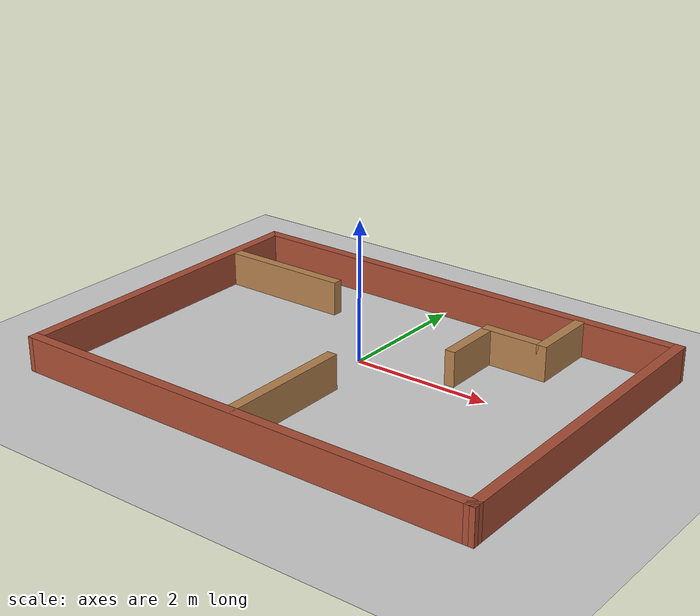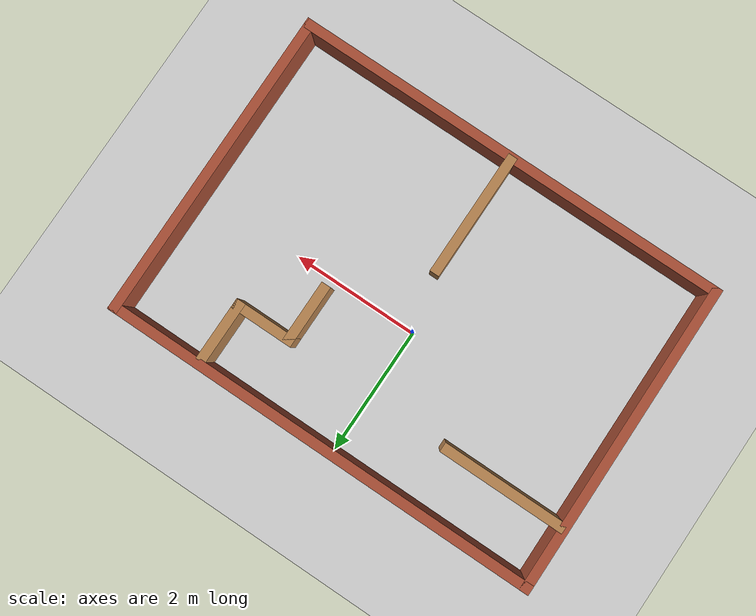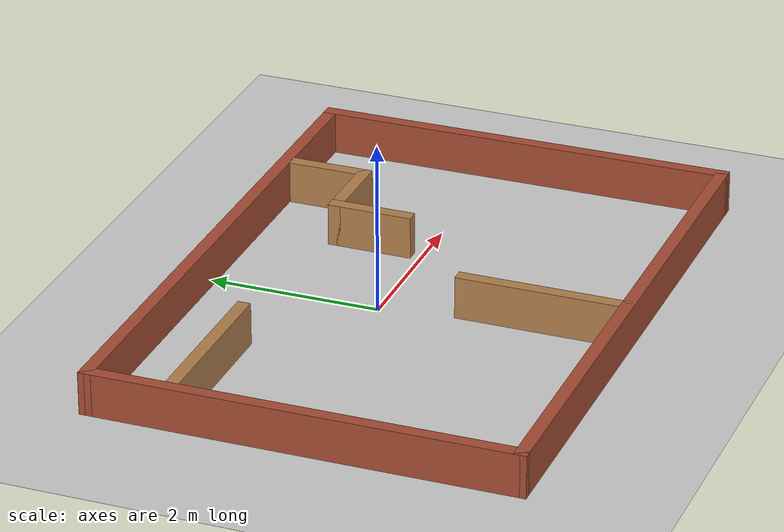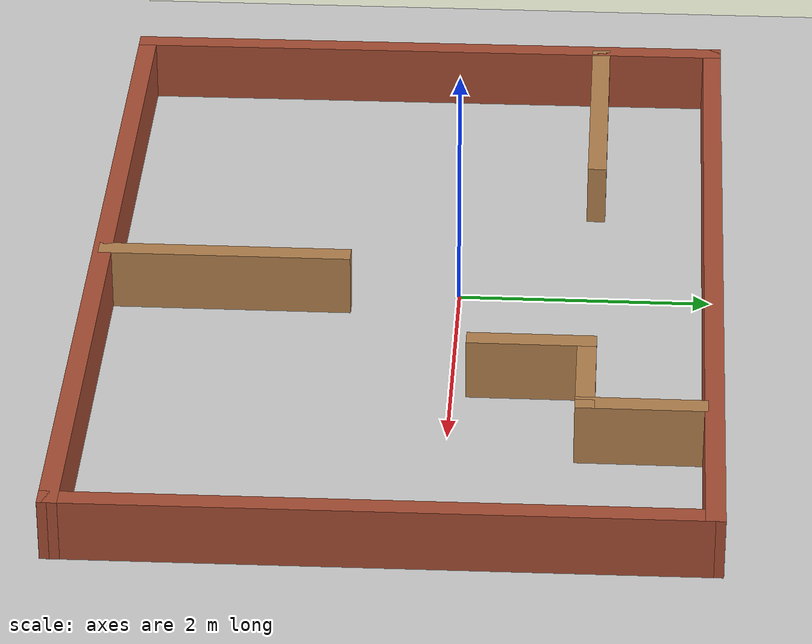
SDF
<sdf version="1.6">
 <world name="default">
  <light name="sun" type="directional">
   <pose>0 0 10 0 -0 0</pose>
   <diffuse>0.8 0.8 0.8 1</diffuse>
   <specular>0.2 0.2 0.2 1</specular>
   <attenuation>
    <range>1000</range>
    <constant>0.9</constant>
    <linear>0.01</linear>
    <quadratic>0.001</quadratic>
   </attenuation>
   <direction>-0.5 0.1 -0.9</direction>
  </light>
  <model name="ground_plane">
   <static>1</static>
   <link name="link">
    <collision name="collision">
     <geometry><plane><normal>0 0 1</normal><size>100 100</size></plane></geometry>
     <surface>
      <contact><collide_bitmask>65535</collide_bitmask></contact>
      <friction><ode><mu>100</mu><mu2>50</mu2></ode></friction>
     </surface>
    </collision>
    <visual name="visual">
     <cast_shadows>0</cast_shadows>
     <geometry><plane><normal>0 0 1</normal><size>100 100</size></plane></geometry>
     <material>
      <script><uri>file://media/materials/scripts/gazebo.material</uri><name>Gazebo/Grey</name></script>
     </material>
    </visual>
   </link>
  </model>
  <gravity>0 0 -9.8</gravity>
  <magnetic_field>6e-06 2.3e-05 -4.2e-05</magnetic_field>
  <atmosphere type="adiabatic"/>
  <physics name="default_physics" default="0" type="ode">
   <max_step_size>0.01</max_step_size>
   <real_time_factor>1</real_time_factor>
   <real_time_update_rate>1000</real_time_update_rate>
  </physics>
  <scene><ambient>0.4 0.4 0.4 1</ambient><background>0.7 0.7 0.7 1</background><shadows>1</shadows></scene>
  <audio><device>default</device></audio>
  <spherical_coordinates>
   <surface_model>EARTH_WGS84</surface_model>
   <latitude_deg>0</latitude_deg>
   <longitude_deg>0</longitude_deg>
   <elevation>0</elevation>
   <heading_deg>0</heading_deg>
  </spherical_coordinates>
  <model name="liuworld1">
   <pose>0.222935 -0.403506 0 0 -0 0</pose>
   <link name="Wall_0">
    <collision name="Wall_0_Collision">
     <geometry><box><size>7 0.15 0.5</size></box></geometry>
     <pose>0 0 0.25 0 -0 0</pose>
    </collision>
    <visual name="Wall_0_Visual">
     <pose>0 0 0.25 0 -0 0</pose>
     <geometry><box><size>7 0.15 0.5</size></box></geometry>
     <material>
      <script><uri>file://media/materials/scripts/gazebo.material</uri><name>Gazebo/Bricks</name></script>
      <ambient>1 1 1 1</ambient>
     </material>
     <meta><layer>0</layer></meta>
    </visual>
    <pose>-0.0135 2.4155 0 0 -0 0</pose>
   </link>
   <link name="Wall_1">
    <collision name="Wall_1_Collision">
     <geometry><box><size>4.98107 0.15 0.5</size></box></geometry>
     <pose>0 0 0.25 0 -0 0</pose>
    </collision>
    <visual name="Wall_1_Visual">
     <pose>0 0 0.25 0 -0 0</pose>
     <geometry><box><size>4.98107 0.15 0.5</size></box></geometry>
     <material>
      <script><uri>file://media/materials/scripts/gazebo.material</uri><name>Gazebo/Bricks</name></script>
      <ambient>1 1 1 1</ambient>
     </material>
     <meta><layer>0</layer></meta>
    </visual>
    <pose>3.425 -0 0 0 -0 -1.56521</pose>
   </link>
   <link name="Wall_10">
    <collision name="Wall_10_Collision">
     <geometry><box><size>1 0.15 0.5</size></box></geometry>
     <pose>0 0 0.25 0 -0 0</pose>
    </collision>
    <visual name="Wall_10_Visual">
     <pose>0 0 0.25 0 -0 0</pose>
     <geometry><box><size>1 0.15 0.5</size></box></geometry>
     <material>
      <script><uri>file://media/materials/scripts/gazebo.material</uri><name>Gazebo/Wood</name></script>
      <ambient>1 1 1 1</ambient>
     </material>
     <meta><layer>0</layer></meta>
    </visual>
    <pose>1.5705 1.4435 0 0 -0 3.14159</pose>
   </link>
   <link name="Wall_11">
    <collision name="Wall_11_Collision">
     <geometry><box><size>1 0.15 0.5</size></box></geometry>
     <pose>0 0 0.25 0 -0 0</pose>
    </collision>
    <visual name="Wall_11_Visual">
     <pose>0 0 0.25 0 -0 0</pose>
     <geometry><box><size>1 0.15 0.5</size></box></geometry>
     <material>
      <script><uri>file://media/materials/scripts/gazebo.material</uri><name>Gazebo/Wood</name></script>
      <ambient>1 1 1 1</ambient>
     </material>
     <meta><layer>0</layer></meta>
    </visual>
    <pose>1.1455 1.0185 0 0 -0 -1.5708</pose>
   </link>
   <link name="Wall_13">
    <collision name="Wall_13_Collision">
     <geometry><box><size>2 0.15 0.5</size></box></geometry>
     <pose>0 0 0.25 0 -0 0</pose>
    </collision>
    <visual name="Wall_13_Visual">
     <pose>0 0 0.25 0 -0 0</pose>
     <geometry><box><size>2 0.15 0.5</size></box></geometry>
     <material>
      <script><uri>file://media/materials/scripts/gazebo.material</uri><name>Gazebo/Wood</name></script>
      <ambient>1 1 1 1</ambient>
     </material>
     <meta><layer>0</layer></meta>
    </visual>
    <pose>-0.0145 -1.4465 0 0 -0 1.5708</pose>
   </link>
   <link name="Wall_2">
    <collision name="Wall_2_Collision">
     <geometry><box><size>7 0.15 0.5</size></box></geometry>
     <pose>0 0 0.25 0 -0 0</pose>
    </collision>
    <visual name="Wall_2_Visual">
     <pose>0 0 0.25 0 -0 0</pose>
     <geometry><box><size>7 0.15 0.5</size></box></geometry>
     <material>
      <script><uri>file://media/materials/scripts/gazebo.material</uri><name>Gazebo/Bricks</name></script>
      <ambient>1 1 1 1</ambient>
     </material>
     <meta><layer>0</layer></meta>
    </visual>
    <pose>0.0135 -2.4155 0 0 -0 3.14159</pose>
   </link>
   <link name="Wall_3">
    <collision name="Wall_3_Collision">
     <geometry><box><size>4.98107 0.15 0.5</size></box></geometry>
     <pose>0 0 0.25 0 -0 0</pose>
    </collision>
    <visual name="Wall_3_Visual">
     <pose>0 0 0.25 0 -0 0</pose>
     <geometry><box><size>4.98107 0.15 0.5</size></box></geometry>
     <material>
      <script><uri>file://media/materials/scripts/gazebo.material</uri><name>Gazebo/Bricks</name></script>
      <ambient>1 1 1 1</ambient>
     </material>
     <meta><layer>0</layer></meta>
    </visual>
    <pose>-3.425 -0 0 0 -0 1.57638</pose>
   </link>
   <link name="Wall_5">
    <collision name="Wall_5_Collision">
     <geometry><box><size>2 0.15 0.5</size></box></geometry>
     <pose>0 0 0.25 0 -0 0</pose>
    </collision>
    <visual name="Wall_5_Visual">
     <pose>0 0 0.25 0 -0 0</pose>
     <geometry><box><size>2 0.15 0.5</size></box></geometry>
     <material>
      <script><uri>file://media/materials/scripts/gazebo.material</uri><name>Gazebo/Wood</name></script>
      <ambient>1 1 1 1</ambient>
     </material>
     <meta><layer>0</layer></meta>
    </visual>
    <pose>-2.4415 1.4745 0 0 -0 3.14159</pose>
   </link>
   <link name="Wall_7">
    <collision name="Wall_7_Collision">
     <geometry><box><size>1 0.15 0.5</size></box></geometry>
     <pose>0 0 0.25 0 -0 0</pose>
    </collision>
    <visual name="Wall_7_Visual">
     <pose>0 0 0.25 0 -0 0</pose>
     <geometry><box><size>1 0.15 0.5</size></box></geometry>
     <material>
      <script><uri>file://media/materials/scripts/gazebo.material</uri><name>Gazebo/Wood</name></script>
      <ambient>1 1 1 1</ambient>
     </material>
     <meta><layer>0</layer></meta>
    </visual>
    <pose>1.9955 1.8685 0 0 -0 1.5708</pose>
   </link>
   <static>1</static>
  </model>
 </world>
</sdf>
